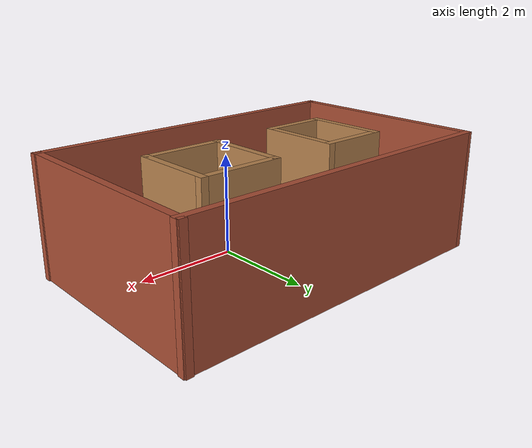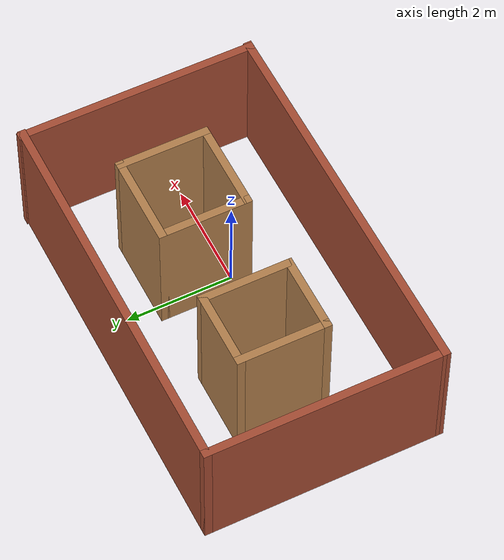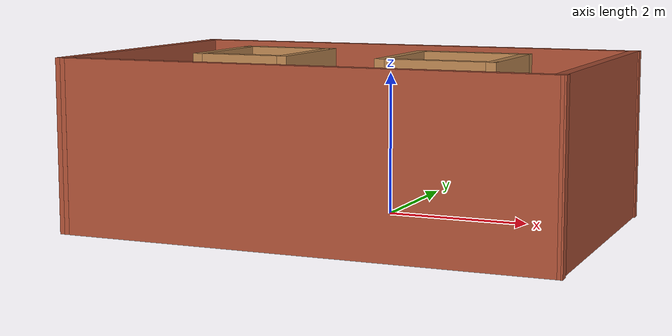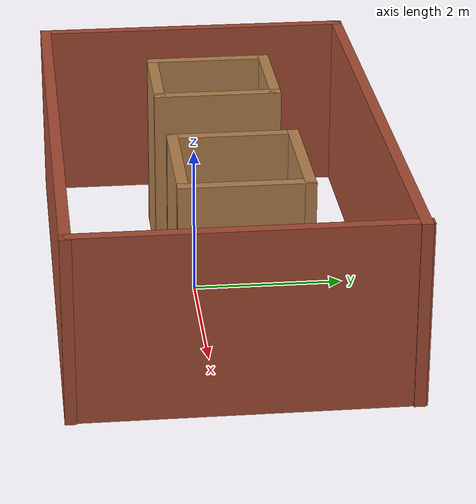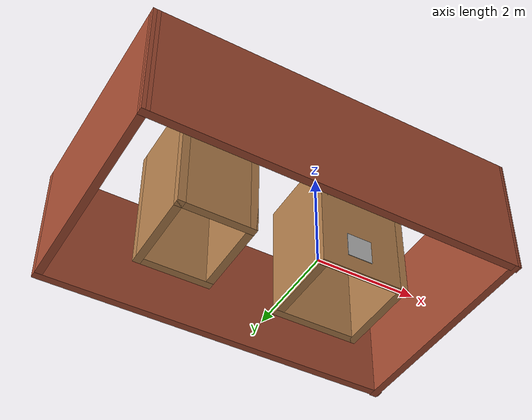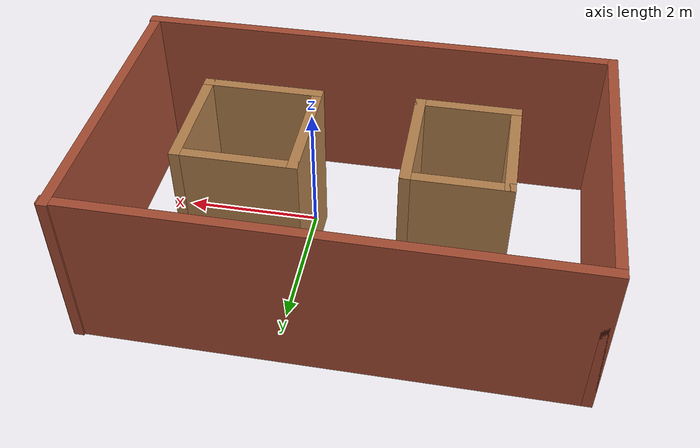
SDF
<?xml version='1.0'?>
<sdf version='1.7'>
  <model name='Double-Box-New-Tags'>
    <model name='Apriltag36_11_00000'>
      <link name='main'>
        <pose>0 0 0 0 -0 0</pose>
        <visual name='main_Visual'>
          <geometry>
            <box>
              <size>0.5 0.5 0.01</size>
            </box>
          </geometry>
          <material>
            <script>
              <uri>model://Apriltag36_11_00000/materials/scripts</uri>
              <uri>model://Apriltag36_11_00000/materials/textures</uri>
              <name>Apriltag36_11_00000</name>
            </script>
          </material>
        </visual>
      </link>
      <static>1</static>
      <pose>0.646583 -0.372862 0.280914 1.57292 -0 0</pose>
    </model>
    <model name='Double-Box'>
      <pose>-0.646583 0.372865 -0.280914 0 -0 0</pose>
      <link name='Wall_0'>
        <collision name='Wall_0_Collision'>
          <geometry>
            <box>
              <size>7.25587 0.15 2.5</size>
            </box>
          </geometry>
          <pose>0 0 1.25 0 -0 0</pose>
        </collision>
        <visual name='Wall_0_Visual'>
          <pose>0 0 1.25 0 -0 0</pose>
          <geometry>
            <box>
              <size>7.25587 0.15 2.5</size>
            </box>
          </geometry>
          <material>
            <script>
              <uri>file://media/materials/scripts/gazebo.material</uri>
              <name>Gazebo/Bricks</name>
            </script>
            <ambient>1 1 1 1</ambient>
          </material>
          <meta>
            <layer>0</layer>
          </meta>
        </visual>
        <pose>-0 -2.17486 0 0 -0 0.003743</pose>
      </link>
      <link name='Wall_1'>
        <collision name='Wall_1_Collision'>
          <geometry>
            <box>
              <size>4.5 0.15 2.5</size>
            </box>
          </geometry>
          <pose>0 0 1.25 0 -0 0</pose>
        </collision>
        <visual name='Wall_1_Visual'>
          <pose>0 0 1.25 0 -0 0</pose>
          <geometry>
            <box>
              <size>4.5 0.15 2.5</size>
            </box>
          </geometry>
          <material>
            <script>
              <uri>file://media/materials/scripts/gazebo.material</uri>
              <name>Gazebo/Bricks</name>
            </script>
            <ambient>1 1 1 1</ambient>
          </material>
          <meta>
            <layer>0</layer>
          </meta>
        </visual>
        <pose>3.52631 0.01344 0 0 -0 1.5708</pose>
      </link>
      <link name='Wall_14'>
        <collision name='Wall_14_Collision'>
          <geometry>
            <box>
              <size>7.25 0.15 2.5</size>
            </box>
          </geometry>
          <pose>0 0 1.25 0 -0 0</pose>
        </collision>
        <visual name='Wall_14_Visual'>
          <pose>0 0 1.25 0 -0 0</pose>
          <geometry>
            <box>
              <size>7.25 0.15 2.5</size>
            </box>
          </geometry>
          <material>
            <script>
              <uri>file://media/materials/scripts/gazebo.material</uri>
              <name>Gazebo/Bricks</name>
            </script>
            <ambient>1 1 1 1</ambient>
          </material>
          <meta>
            <layer>0</layer>
          </meta>
        </visual>
        <pose>-0.002911 2.16184 0 0 -0 0</pose>
      </link>
      <link name='Wall_16'>
        <collision name='Wall_16_Collision'>
          <geometry>
            <box>
              <size>1.75 0.15 2.5</size>
            </box>
          </geometry>
          <pose>0 0 1.25 0 -0 0</pose>
        </collision>
        <visual name='Wall_16_Visual'>
          <pose>0 0 1.25 0 -0 0</pose>
          <geometry>
            <box>
              <size>1.75 0.15 2.5</size>
            </box>
          </geometry>
          <material>
            <script>
              <uri>file://media/materials/scripts/gazebo.material</uri>
              <name>Gazebo/Wood</name>
            </script>
            <ambient>1 1 1 1</ambient>
          </material>
          <meta>
            <layer>0</layer>
          </meta>
        </visual>
        <pose>-2.20514 0.094813 0 0 -0 -1.5708</pose>
      </link>
      <link name='Wall_17'>
        <collision name='Wall_17_Collision'>
          <geometry>
            <box>
              <size>1.5 0.15 2.5</size>
            </box>
          </geometry>
          <pose>0 0 1.25 0 -0 0</pose>
        </collision>
        <visual name='Wall_17_Visual'>
          <pose>0 0 1.25 0 -0 0</pose>
          <geometry>
            <box>
              <size>1.5 0.15 2.5</size>
            </box>
          </geometry>
          <material>
            <script>
              <uri>file://media/materials/scripts/gazebo.material</uri>
              <name>Gazebo/Wood</name>
            </script>
            <ambient>1 1 1 1</ambient>
          </material>
          <meta>
            <layer>0</layer>
          </meta>
        </visual>
        <pose>-1.53015 -0.705186 0 0 -0 0</pose>
      </link>
      <link name='Wall_18'>
        <collision name='Wall_18_Collision'>
          <geometry>
            <box>
              <size>1.75 0.15 2.5</size>
            </box>
          </geometry>
          <pose>0 0 1.25 0 -0 0</pose>
        </collision>
        <visual name='Wall_18_Visual'>
          <pose>0 0 1.25 0 -0 0</pose>
          <geometry>
            <box>
              <size>1.75 0.15 2.5</size>
            </box>
          </geometry>
          <material>
            <script>
              <uri>file://media/materials/scripts/gazebo.material</uri>
              <name>Gazebo/Wood</name>
            </script>
            <ambient>1 1 1 1</ambient>
          </material>
          <meta>
            <layer>0</layer>
          </meta>
        </visual>
        <pose>-0.855145 0.094813 0 0 -0 1.5708</pose>
      </link>
      <link name='Wall_19'>
        <collision name='Wall_19_Collision'>
          <geometry>
            <box>
              <size>1.5 0.15 2.5</size>
            </box>
          </geometry>
          <pose>0 0 1.25 0 -0 0</pose>
        </collision>
        <visual name='Wall_19_Visual'>
          <pose>0 0 1.25 0 -0 0</pose>
          <geometry>
            <box>
              <size>1.5 0.15 2.5</size>
            </box>
          </geometry>
          <material>
            <script>
              <uri>file://media/materials/scripts/gazebo.material</uri>
              <name>Gazebo/Wood</name>
            </script>
            <ambient>1 1 1 1</ambient>
          </material>
          <meta>
            <layer>0</layer>
          </meta>
        </visual>
        <pose>-1.53015 0.894813 0 0 -0 3.14159</pose>
      </link>
      <link name='Wall_21'>
        <collision name='Wall_21_Collision'>
          <geometry>
            <box>
              <size>1.75 0.15 2.5</size>
            </box>
          </geometry>
          <pose>0 0 1.25 0 -0 0</pose>
        </collision>
        <visual name='Wall_21_Visual'>
          <pose>0 0 1.25 0 -0 0</pose>
          <geometry>
            <box>
              <size>1.75 0.15 2.5</size>
            </box>
          </geometry>
          <material>
            <script>
              <uri>file://media/materials/scripts/gazebo.material</uri>
              <name>Gazebo/Wood</name>
            </script>
            <ambient>1 1 1 1</ambient>
          </material>
          <meta>
            <layer>0</layer>
          </meta>
        </visual>
        <pose>0.614476 0.148014 0 0 -0 -1.5708</pose>
      </link>
      <link name='Wall_22'>
        <collision name='Wall_22_Collision'>
          <geometry>
            <box>
              <size>1.75 0.15 2.5</size>
            </box>
          </geometry>
          <pose>0 0 1.25 0 -0 0</pose>
        </collision>
        <visual name='Wall_22_Visual'>
          <pose>0 0 1.25 0 -0 0</pose>
          <geometry>
            <box>
              <size>1.75 0.15 2.5</size>
            </box>
          </geometry>
          <material>
            <script>
              <uri>file://media/materials/scripts/gazebo.material</uri>
              <name>Gazebo/Wood</name>
            </script>
            <ambient>1 1 1 1</ambient>
          </material>
          <meta>
            <layer>0</layer>
          </meta>
        </visual>
        <pose>1.41448 -0.651986 0 0 -0 0</pose>
      </link>
      <link name='Wall_23'>
        <collision name='Wall_23_Collision'>
          <geometry>
            <box>
              <size>1.75 0.15 2.5</size>
            </box>
          </geometry>
          <pose>0 0 1.25 0 -0 0</pose>
        </collision>
        <visual name='Wall_23_Visual'>
          <pose>0 0 1.25 0 -0 0</pose>
          <geometry>
            <box>
              <size>1.75 0.15 2.5</size>
            </box>
          </geometry>
          <material>
            <script>
              <uri>file://media/materials/scripts/gazebo.material</uri>
              <name>Gazebo/Wood</name>
            </script>
            <ambient>1 1 1 1</ambient>
          </material>
          <meta>
            <layer>0</layer>
          </meta>
        </visual>
        <pose>2.21448 0.148014 0 0 -0 1.5708</pose>
      </link>
      <link name='Wall_24'>
        <collision name='Wall_24_Collision'>
          <geometry>
            <box>
              <size>1.75 0.15 2.5</size>
            </box>
          </geometry>
          <pose>0 0 1.25 0 -0 0</pose>
        </collision>
        <visual name='Wall_24_Visual'>
          <pose>0 0 1.25 0 -0 0</pose>
          <geometry>
            <box>
              <size>1.75 0.15 2.5</size>
            </box>
          </geometry>
          <material>
            <script>
              <uri>file://media/materials/scripts/gazebo.material</uri>
              <name>Gazebo/Wood</name>
            </script>
            <ambient>1 1 1 1</ambient>
          </material>
          <meta>
            <layer>0</layer>
          </meta>
        </visual>
        <pose>1.41448 0.948014 0 0 -0 3.14159</pose>
      </link>
      <link name='Wall_3'>
        <collision name='Wall_3_Collision'>
          <geometry>
            <box>
              <size>4.5 0.15 2.5</size>
            </box>
          </geometry>
          <pose>0 0 1.25 0 -0 0</pose>
        </collision>
        <visual name='Wall_3_Visual'>
          <pose>0 0 1.25 0 -0 0</pose>
          <geometry>
            <box>
              <size>4.5 0.15 2.5</size>
            </box>
          </geometry>
          <material>
            <script>
              <uri>file://media/materials/scripts/gazebo.material</uri>
              <name>Gazebo/Bricks</name>
            </script>
            <ambient>1 1 1 1</ambient>
          </material>
          <meta>
            <layer>0</layer>
          </meta>
        </visual>
        <pose>-3.55291 -0.01316 0 0 -0 -1.5708</pose>
      </link>
      <static>1</static>
    </model>
    <static>0</static>
    <allow_auto_disable>1</allow_auto_disable>
  </model>
</sdf>
